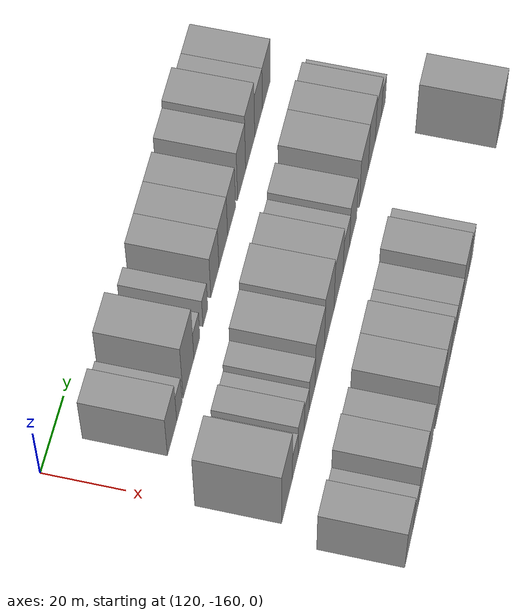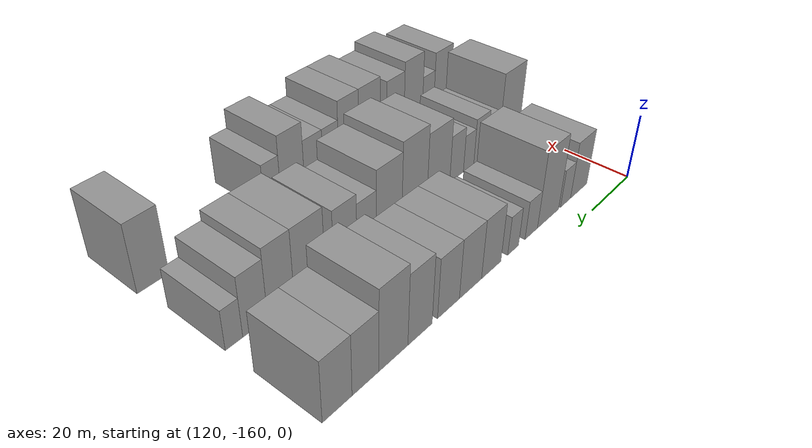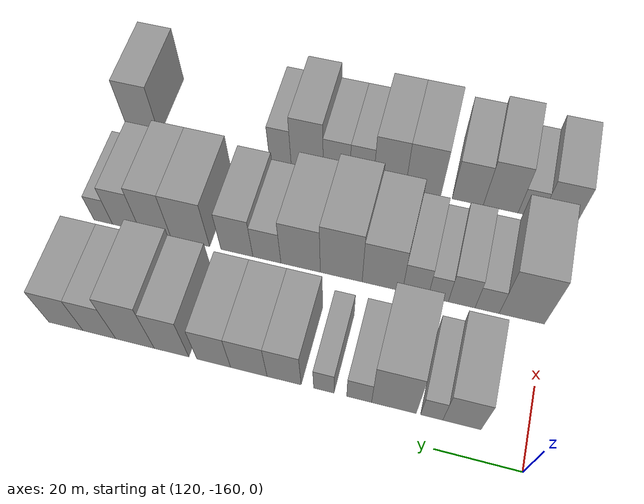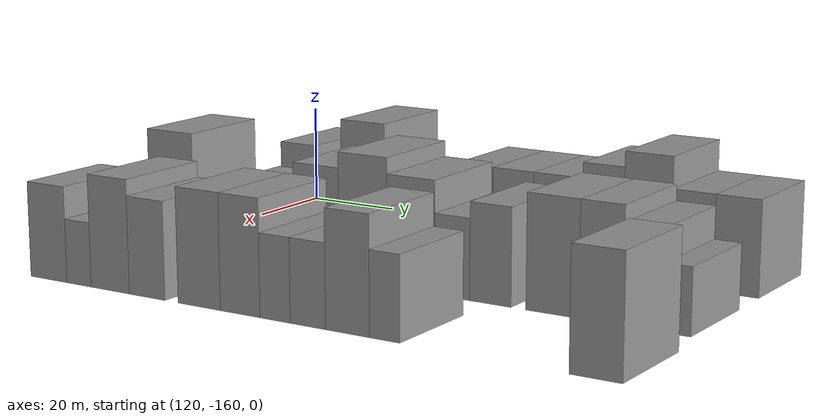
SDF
<sdf version="1.6">
 <world name="default">
  <model name="building_364">
   <static>1</static>
   <pose>137.0000 -145.1321 0 0.000000 0.000000 0.000000</pose>
   <link name="link">
    <pose>0 0 9.00 0 0 0</pose>
    <collision name="collision"><geometry><box><size>20.0000 8.8131 18.0000</size></box></geometry></collision>
    <visual name="visual">
     <cast_shadows>0</cast_shadows>
     <geometry><box><size>20.0000 8.8131 18.0000</size></box></geometry>
     <material>
      <script>
       <uri>model://grey_wall/materials/scripts</uri>
       <uri>model://grey_wall/materials/textures</uri>
       <name>vrc/grey_wall</name>
      </script>
     </material>
    </visual>
   </link>
  </model>
  <model name="building_365">
   <static>1</static>
   <pose>137.0000 -138.1507 0 0.000000 0.000000 0.000000</pose>
   <link name="link">
    <pose>0 0 6.00 0 0 0</pose>
    <collision name="collision"><geometry><box><size>20.0000 5.1497 12.0000</size></box></geometry></collision>
    <visual name="visual">
     <cast_shadows>0</cast_shadows>
     <geometry><box><size>20.0000 5.1497 12.0000</size></box></geometry>
     <material>
      <script>
       <uri>model://grey_wall/materials/scripts</uri>
       <uri>model://grey_wall/materials/textures</uri>
       <name>vrc/grey_wall</name>
      </script>
     </material>
    </visual>
   </link>
  </model>
  <model name="building_366">
   <static>1</static>
   <pose>137.0000 -129.3474 0 0.000000 0.000000 0.000000</pose>
   <link name="link">
    <pose>0 0 12.00 0 0 0</pose>
    <collision name="collision"><geometry><box><size>20.0000 10.4568 24.0000</size></box></geometry></collision>
    <visual name="visual">
     <cast_shadows>0</cast_shadows>
     <geometry><box><size>20.0000 10.4568 24.0000</size></box></geometry>
     <material>
      <script>
       <uri>model://grey_wall/materials/scripts</uri>
       <uri>model://grey_wall/materials/textures</uri>
       <name>vrc/grey_wall</name>
      </script>
     </material>
    </visual>
   </link>
  </model>
  <model name="building_367">
   <static>1</static>
   <pose>137.0000 -121.1845 0 0.000000 0.000000 0.000000</pose>
   <link name="link">
    <pose>0 0 6.00 0 0 0</pose>
    <collision name="collision"><geometry><box><size>20.0000 5.8690 12.0000</size></box></geometry></collision>
    <visual name="visual">
     <cast_shadows>0</cast_shadows>
     <geometry><box><size>20.0000 5.8690 12.0000</size></box></geometry>
     <material>
      <script>
       <uri>model://grey_wall/materials/scripts</uri>
       <uri>model://grey_wall/materials/textures</uri>
       <name>vrc/grey_wall</name>
      </script>
     </material>
    </visual>
   </link>
  </model>
  <model name="building_368">
   <static>1</static>
   <pose>137.0000 -112.8129 0 0.000000 0.000000 0.000000</pose>
   <link name="link">
    <pose>0 0 6.00 0 0 0</pose>
    <collision name="collision"><geometry><box><size>20.0000 4.8742 12.0000</size></box></geometry></collision>
    <visual name="visual">
     <cast_shadows>0</cast_shadows>
     <geometry><box><size>20.0000 4.8742 12.0000</size></box></geometry>
     <material>
      <script>
       <uri>model://grey_wall/materials/scripts</uri>
       <uri>model://grey_wall/materials/textures</uri>
       <name>vrc/grey_wall</name>
      </script>
     </material>
    </visual>
   </link>
  </model>
  <model name="building_369">
   <static>1</static>
   <pose>137.0000 -103.2546 0 0.000000 0.000000 0.000000</pose>
   <link name="link">
    <pose>0 0 9.00 0 0 0</pose>
    <collision name="collision"><geometry><box><size>20.0000 8.2423 18.0000</size></box></geometry></collision>
    <visual name="visual">
     <cast_shadows>0</cast_shadows>
     <geometry><box><size>20.0000 8.2423 18.0000</size></box></geometry>
     <material>
      <script>
       <uri>model://grey_wall/materials/scripts</uri>
       <uri>model://grey_wall/materials/textures</uri>
       <name>vrc/grey_wall</name>
      </script>
     </material>
    </visual>
   </link>
  </model>
  <model name="building_370">
   <static>1</static>
   <pose>137.0000 -94.6780 0 0.000000 0.000000 0.000000</pose>
   <link name="link">
    <pose>0 0 9.00 0 0 0</pose>
    <collision name="collision"><geometry><box><size>20.0000 8.9110 18.0000</size></box></geometry></collision>
    <visual name="visual">
     <cast_shadows>0</cast_shadows>
     <geometry><box><size>20.0000 8.9110 18.0000</size></box></geometry>
     <material>
      <script>
       <uri>model://grey_wall/materials/scripts</uri>
       <uri>model://grey_wall/materials/textures</uri>
       <name>vrc/grey_wall</name>
      </script>
     </material>
    </visual>
   </link>
  </model>
  <model name="building_371">
   <static>1</static>
   <pose>137.0000 -86.0611 0 0.000000 0.000000 0.000000</pose>
   <link name="link">
    <pose>0 0 9.00 0 0 0</pose>
    <collision name="collision"><geometry><box><size>20.0000 8.3228 18.0000</size></box></geometry></collision>
    <visual name="visual">
     <cast_shadows>0</cast_shadows>
     <geometry><box><size>20.0000 8.3228 18.0000</size></box></geometry>
     <material>
      <script>
       <uri>model://grey_wall/materials/scripts</uri>
       <uri>model://grey_wall/materials/textures</uri>
       <name>vrc/grey_wall</name>
      </script>
     </material>
    </visual>
   </link>
  </model>
  <model name="building_372">
   <static>1</static>
   <pose>137.0000 -75.5804 0 0.000000 0.000000 0.000000</pose>
   <link name="link">
    <pose>0 0 10.50 0 0 0</pose>
    <collision name="collision"><geometry><box><size>20.0000 8.6385 21.0000</size></box></geometry></collision>
    <visual name="visual">
     <cast_shadows>0</cast_shadows>
     <geometry><box><size>20.0000 8.6385 21.0000</size></box></geometry>
     <material>
      <script>
       <uri>model://grey_wall/materials/scripts</uri>
       <uri>model://grey_wall/materials/textures</uri>
       <name>vrc/grey_wall</name>
      </script>
     </material>
    </visual>
   </link>
  </model>
  <model name="building_373">
   <static>1</static>
   <pose>137.0000 -66.3863 0 0.000000 0.000000 0.000000</pose>
   <link name="link">
    <pose>0 0 12.00 0 0 0</pose>
    <collision name="collision"><geometry><box><size>20.0000 9.7497 24.0000</size></box></geometry></collision>
    <visual name="visual">
     <cast_shadows>0</cast_shadows>
     <geometry><box><size>20.0000 9.7497 24.0000</size></box></geometry>
     <material>
      <script>
       <uri>model://grey_wall/materials/scripts</uri>
       <uri>model://grey_wall/materials/textures</uri>
       <name>vrc/grey_wall</name>
      </script>
     </material>
    </visual>
   </link>
  </model>
  <model name="building_374">
   <static>1</static>
   <pose>137.0000 -57.3161 0 0.000000 0.000000 0.000000</pose>
   <link name="link">
    <pose>0 0 9.00 0 0 0</pose>
    <collision name="collision"><geometry><box><size>20.0000 8.3906 18.0000</size></box></geometry></collision>
    <visual name="visual">
     <cast_shadows>0</cast_shadows>
     <geometry><box><size>20.0000 8.3906 18.0000</size></box></geometry>
     <material>
      <script>
       <uri>model://grey_wall/materials/scripts</uri>
       <uri>model://grey_wall/materials/textures</uri>
       <name>vrc/grey_wall</name>
      </script>
     </material>
    </visual>
   </link>
  </model>
  <model name="building_375">
   <static>1</static>
   <pose>137.0000 -48.7037 0 0.000000 0.000000 0.000000</pose>
   <link name="link">
    <pose>0 0 9.00 0 0 0</pose>
    <collision name="collision"><geometry><box><size>20.0000 8.8342 18.0000</size></box></geometry></collision>
    <visual name="visual">
     <cast_shadows>0</cast_shadows>
     <geometry><box><size>20.0000 8.8342 18.0000</size></box></geometry>
     <material>
      <script>
       <uri>model://grey_wall/materials/scripts</uri>
       <uri>model://grey_wall/materials/textures</uri>
       <name>vrc/grey_wall</name>
      </script>
     </material>
    </visual>
   </link>
  </model>
  <model name="building_480">
   <static>1</static>
   <pose>166.0000 -154.7428 0 0.000000 0.000000 0.000000</pose>
   <link name="link">
    <pose>0 0 12.00 0 0 0</pose>
    <collision name="collision"><geometry><box><size>20.0000 10.9866 24.0000</size></box></geometry></collision>
    <visual name="visual">
     <cast_shadows>0</cast_shadows>
     <geometry><box><size>20.0000 10.9866 24.0000</size></box></geometry>
     <material>
      <script>
       <uri>model://grey_wall/materials/scripts</uri>
       <uri>model://grey_wall/materials/textures</uri>
       <name>vrc/grey_wall</name>
      </script>
     </material>
    </visual>
   </link>
  </model>
  <model name="building_481">
   <static>1</static>
   <pose>166.0000 -146.2857 0 0.000000 0.000000 0.000000</pose>
   <link name="link">
    <pose>0 0 6.00 0 0 0</pose>
    <collision name="collision"><geometry><box><size>20.0000 5.9277 12.0000</size></box></geometry></collision>
    <visual name="visual">
     <cast_shadows>0</cast_shadows>
     <geometry><box><size>20.0000 5.9277 12.0000</size></box></geometry>
     <material>
      <script>
       <uri>model://grey_wall/materials/scripts</uri>
       <uri>model://grey_wall/materials/textures</uri>
       <name>vrc/grey_wall</name>
      </script>
     </material>
    </visual>
   </link>
  </model>
  <model name="building_482">
   <static>1</static>
   <pose>166.0000 -140.0182 0 0.000000 0.000000 0.000000</pose>
   <link name="link">
    <pose>0 0 7.50 0 0 0</pose>
    <collision name="collision"><geometry><box><size>20.0000 6.6073 15.0000</size></box></geometry></collision>
    <visual name="visual">
     <cast_shadows>0</cast_shadows>
     <geometry><box><size>20.0000 6.6073 15.0000</size></box></geometry>
     <material>
      <script>
       <uri>model://grey_wall/materials/scripts</uri>
       <uri>model://grey_wall/materials/textures</uri>
       <name>vrc/grey_wall</name>
      </script>
     </material>
    </visual>
   </link>
  </model>
  <model name="building_483">
   <static>1</static>
   <pose>166.0000 -134.2066 0 0.000000 0.000000 0.000000</pose>
   <link name="link">
    <pose>0 0 6.00 0 0 0</pose>
    <collision name="collision"><geometry><box><size>20.0000 5.0158 12.0000</size></box></geometry></collision>
    <visual name="visual">
     <cast_shadows>0</cast_shadows>
     <geometry><box><size>20.0000 5.0158 12.0000</size></box></geometry>
     <material>
      <script>
       <uri>model://grey_wall/materials/scripts</uri>
       <uri>model://grey_wall/materials/textures</uri>
       <name>vrc/grey_wall</name>
      </script>
     </material>
    </visual>
   </link>
  </model>
  <model name="building_484">
   <static>1</static>
   <pose>166.0000 -128.4891 0 0.000000 0.000000 0.000000</pose>
   <link name="link">
    <pose>0 0 7.50 0 0 0</pose>
    <collision name="collision"><geometry><box><size>20.0000 6.4194 15.0000</size></box></geometry></collision>
    <visual name="visual">
     <cast_shadows>0</cast_shadows>
     <geometry><box><size>20.0000 6.4194 15.0000</size></box></geometry>
     <material>
      <script>
       <uri>model://grey_wall/materials/scripts</uri>
       <uri>model://grey_wall/materials/textures</uri>
       <name>vrc/grey_wall</name>
      </script>
     </material>
    </visual>
   </link>
  </model>
  <model name="building_485">
   <static>1</static>
   <pose>166.0000 -120.1821 0 0.000000 0.000000 0.000000</pose>
   <link name="link">
    <pose>0 0 10.50 0 0 0</pose>
    <collision name="collision"><geometry><box><size>20.0000 10.1947 21.0000</size></box></geometry></collision>
    <visual name="visual">
     <cast_shadows>0</cast_shadows>
     <geometry><box><size>20.0000 10.1947 21.0000</size></box></geometry>
     <material>
      <script>
       <uri>model://grey_wall/materials/scripts</uri>
       <uri>model://grey_wall/materials/textures</uri>
       <name>vrc/grey_wall</name>
      </script>
     </material>
    </visual>
   </link>
  </model>
  <model name="building_486">
   <static>1</static>
   <pose>166.0000 -109.7435 0 0.000000 0.000000 0.000000</pose>
   <link name="link">
    <pose>0 0 12.00 0 0 0</pose>
    <collision name="collision"><geometry><box><size>20.0000 10.6824 24.0000</size></box></geometry></collision>
    <visual name="visual">
     <cast_shadows>0</cast_shadows>
     <geometry><box><size>20.0000 10.6824 24.0000</size></box></geometry>
     <material>
      <script>
       <uri>model://grey_wall/materials/scripts</uri>
       <uri>model://grey_wall/materials/textures</uri>
       <name>vrc/grey_wall</name>
      </script>
     </material>
    </visual>
   </link>
  </model>
  <model name="building_487">
   <static>1</static>
   <pose>166.0000 -99.3065 0 0.000000 0.000000 0.000000</pose>
   <link name="link">
    <pose>0 0 10.50 0 0 0</pose>
    <collision name="collision"><geometry><box><size>20.0000 10.1917 21.0000</size></box></geometry></collision>
    <visual name="visual">
     <cast_shadows>0</cast_shadows>
     <geometry><box><size>20.0000 10.1917 21.0000</size></box></geometry>
     <material>
      <script>
       <uri>model://grey_wall/materials/scripts</uri>
       <uri>model://grey_wall/materials/textures</uri>
       <name>vrc/grey_wall</name>
      </script>
     </material>
    </visual>
   </link>
  </model>
  <model name="building_488">
   <static>1</static>
   <pose>166.0000 -90.5502 0 0.000000 0.000000 0.000000</pose>
   <link name="link">
    <pose>0 0 7.50 0 0 0</pose>
    <collision name="collision"><geometry><box><size>20.0000 7.3208 15.0000</size></box></geometry></collision>
    <visual name="visual">
     <cast_shadows>0</cast_shadows>
     <geometry><box><size>20.0000 7.3208 15.0000</size></box></geometry>
     <material>
      <script>
       <uri>model://grey_wall/materials/scripts</uri>
       <uri>model://grey_wall/materials/textures</uri>
       <name>vrc/grey_wall</name>
      </script>
     </material>
    </visual>
   </link>
  </model>
  <model name="building_489">
   <static>1</static>
   <pose>166.0000 -82.6705 0 0.000000 0.000000 0.000000</pose>
   <link name="link">
    <pose>0 0 9.00 0 0 0</pose>
    <collision name="collision"><geometry><box><size>20.0000 8.4388 18.0000</size></box></geometry></collision>
    <visual name="visual">
     <cast_shadows>0</cast_shadows>
     <geometry><box><size>20.0000 8.4388 18.0000</size></box></geometry>
     <material>
      <script>
       <uri>model://grey_wall/materials/scripts</uri>
       <uri>model://grey_wall/materials/textures</uri>
       <name>vrc/grey_wall</name>
      </script>
     </material>
    </visual>
   </link>
  </model>
  <model name="building_490">
   <static>1</static>
   <pose>166.0000 -70.2740 0 0.000000 0.000000 0.000000</pose>
   <link name="link">
    <pose>0 0 10.50 0 0 0</pose>
    <collision name="collision"><geometry><box><size>20.0000 10.3541 21.0000</size></box></geometry></collision>
    <visual name="visual">
     <cast_shadows>0</cast_shadows>
     <geometry><box><size>20.0000 10.3541 21.0000</size></box></geometry>
     <material>
      <script>
       <uri>model://grey_wall/materials/scripts</uri>
       <uri>model://grey_wall/materials/textures</uri>
       <name>vrc/grey_wall</name>
      </script>
     </material>
    </visual>
   </link>
  </model>
  <model name="building_491">
   <static>1</static>
   <pose>166.0000 -60.8939 0 0.000000 0.000000 0.000000</pose>
   <link name="link">
    <pose>0 0 10.50 0 0 0</pose>
    <collision name="collision"><geometry><box><size>20.0000 8.4061 21.0000</size></box></geometry></collision>
    <visual name="visual">
     <cast_shadows>0</cast_shadows>
     <geometry><box><size>20.0000 8.4061 21.0000</size></box></geometry>
     <material>
      <script>
       <uri>model://grey_wall/materials/scripts</uri>
       <uri>model://grey_wall/materials/textures</uri>
       <name>vrc/grey_wall</name>
      </script>
     </material>
    </visual>
   </link>
  </model>
  <model name="building_492">
   <static>1</static>
   <pose>166.0000 -52.9445 0 0.000000 0.000000 0.000000</pose>
   <link name="link">
    <pose>0 0 9.00 0 0 0</pose>
    <collision name="collision"><geometry><box><size>20.0000 7.4928 18.0000</size></box></geometry></collision>
    <visual name="visual">
     <cast_shadows>0</cast_shadows>
     <geometry><box><size>20.0000 7.4928 18.0000</size></box></geometry>
     <material>
      <script>
       <uri>model://grey_wall/materials/scripts</uri>
       <uri>model://grey_wall/materials/textures</uri>
       <name>vrc/grey_wall</name>
      </script>
     </material>
    </visual>
   </link>
  </model>
  <model name="building_493">
   <static>1</static>
   <pose>166.0000 -46.6658 0 0.000000 0.000000 0.000000</pose>
   <link name="link">
    <pose>0 0 6.00 0 0 0</pose>
    <collision name="collision"><geometry><box><size>20.0000 5.0645 12.0000</size></box></geometry></collision>
    <visual name="visual">
     <cast_shadows>0</cast_shadows>
     <geometry><box><size>20.0000 5.0645 12.0000</size></box></geometry>
     <material>
      <script>
       <uri>model://grey_wall/materials/scripts</uri>
       <uri>model://grey_wall/materials/textures</uri>
       <name>vrc/grey_wall</name>
      </script>
     </material>
    </visual>
   </link>
  </model>
  <model name="building_596">
   <static>1</static>
   <pose>195.0000 -160.1437 0 0.000000 0.000000 0.000000</pose>
   <link name="link">
    <pose>0 0 9.00 0 0 0</pose>
    <collision name="collision"><geometry><box><size>20.0000 8.9356 18.0000</size></box></geometry></collision>
    <visual name="visual">
     <cast_shadows>0</cast_shadows>
     <geometry><box><size>20.0000 8.9356 18.0000</size></box></geometry>
     <material>
      <script>
       <uri>model://grey_wall/materials/scripts</uri>
       <uri>model://grey_wall/materials/textures</uri>
       <name>vrc/grey_wall</name>
      </script>
     </material>
    </visual>
   </link>
  </model>
  <model name="building_597">
   <static>1</static>
   <pose>195.0000 -152.7299 0 0.000000 0.000000 0.000000</pose>
   <link name="link">
    <pose>0 0 6.00 0 0 0</pose>
    <collision name="collision"><geometry><box><size>20.0000 5.8920 12.0000</size></box></geometry></collision>
    <visual name="visual">
     <cast_shadows>0</cast_shadows>
     <geometry><box><size>20.0000 5.8920 12.0000</size></box></geometry>
     <material>
      <script>
       <uri>model://grey_wall/materials/scripts</uri>
       <uri>model://grey_wall/materials/textures</uri>
       <name>vrc/grey_wall</name>
      </script>
     </material>
    </visual>
   </link>
  </model>
  <model name="building_598">
   <static>1</static>
   <pose>195.0000 -145.2344 0 0.000000 0.000000 0.000000</pose>
   <link name="link">
    <pose>0 0 10.50 0 0 0</pose>
    <collision name="collision"><geometry><box><size>20.0000 9.0990 21.0000</size></box></geometry></collision>
    <visual name="visual">
     <cast_shadows>0</cast_shadows>
     <geometry><box><size>20.0000 9.0990 21.0000</size></box></geometry>
     <material>
      <script>
       <uri>model://grey_wall/materials/scripts</uri>
       <uri>model://grey_wall/materials/textures</uri>
       <name>vrc/grey_wall</name>
      </script>
     </material>
    </visual>
   </link>
  </model>
  <model name="building_599">
   <static>1</static>
   <pose>195.0000 -136.5656 0 0.000000 0.000000 0.000000</pose>
   <link name="link">
    <pose>0 0 9.00 0 0 0</pose>
    <collision name="collision"><geometry><box><size>20.0000 8.2386 18.0000</size></box></geometry></collision>
    <visual name="visual">
     <cast_shadows>0</cast_shadows>
     <geometry><box><size>20.0000 8.2386 18.0000</size></box></geometry>
     <material>
      <script>
       <uri>model://grey_wall/materials/scripts</uri>
       <uri>model://grey_wall/materials/textures</uri>
       <name>vrc/grey_wall</name>
      </script>
     </material>
    </visual>
   </link>
  </model>
  <model name="building_600">
   <static>1</static>
   <pose>195.0000 -124.7177 0 0.000000 0.000000 0.000000</pose>
   <link name="link">
    <pose>0 0 10.50 0 0 0</pose>
    <collision name="collision"><geometry><box><size>20.0000 9.4572 21.0000</size></box></geometry></collision>
    <visual name="visual">
     <cast_shadows>0</cast_shadows>
     <geometry><box><size>20.0000 9.4572 21.0000</size></box></geometry>
     <material>
      <script>
       <uri>model://grey_wall/materials/scripts</uri>
       <uri>model://grey_wall/materials/textures</uri>
       <name>vrc/grey_wall</name>
      </script>
     </material>
    </visual>
   </link>
  </model>
  <model name="building_601">
   <static>1</static>
   <pose>195.0000 -115.6810 0 0.000000 0.000000 0.000000</pose>
   <link name="link">
    <pose>0 0 10.50 0 0 0</pose>
    <collision name="collision"><geometry><box><size>20.0000 8.6161 21.0000</size></box></geometry></collision>
    <visual name="visual">
     <cast_shadows>0</cast_shadows>
     <geometry><box><size>20.0000 8.6161 21.0000</size></box></geometry>
     <material>
      <script>
       <uri>model://grey_wall/materials/scripts</uri>
       <uri>model://grey_wall/materials/textures</uri>
       <name>vrc/grey_wall</name>
      </script>
     </material>
    </visual>
   </link>
  </model>
  <model name="building_602">
   <static>1</static>
   <pose>195.0000 -108.1710 0 0.000000 0.000000 0.000000</pose>
   <link name="link">
    <pose>0 0 7.50 0 0 0</pose>
    <collision name="collision"><geometry><box><size>20.0000 6.4041 15.0000</size></box></geometry></collision>
    <visual name="visual">
     <cast_shadows>0</cast_shadows>
     <geometry><box><size>20.0000 6.4041 15.0000</size></box></geometry>
     <material>
      <script>
       <uri>model://grey_wall/materials/scripts</uri>
       <uri>model://grey_wall/materials/textures</uri>
       <name>vrc/grey_wall</name>
      </script>
     </material>
    </visual>
   </link>
  </model>
  <model name="building_603">
   <static>1</static>
   <pose>195.0000 -101.3112 0 0.000000 0.000000 0.000000</pose>
   <link name="link">
    <pose>0 0 7.50 0 0 0</pose>
    <collision name="collision"><geometry><box><size>20.0000 7.3154 15.0000</size></box></geometry></collision>
    <visual name="visual">
     <cast_shadows>0</cast_shadows>
     <geometry><box><size>20.0000 7.3154 15.0000</size></box></geometry>
     <material>
      <script>
       <uri>model://grey_wall/materials/scripts</uri>
       <uri>model://grey_wall/materials/textures</uri>
       <name>vrc/grey_wall</name>
      </script>
     </material>
    </visual>
   </link>
  </model>
  <model name="building_604">
   <static>1</static>
   <pose>195.0000 -93.2119 0 0.000000 0.000000 0.000000</pose>
   <link name="link">
    <pose>0 0 10.50 0 0 0</pose>
    <collision name="collision"><geometry><box><size>20.0000 8.8834 21.0000</size></box></geometry></collision>
    <visual name="visual">
     <cast_shadows>0</cast_shadows>
     <geometry><box><size>20.0000 8.8834 21.0000</size></box></geometry>
     <material>
      <script>
       <uri>model://grey_wall/materials/scripts</uri>
       <uri>model://grey_wall/materials/textures</uri>
       <name>vrc/grey_wall</name>
      </script>
     </material>
    </visual>
   </link>
  </model>
  <model name="building_605">
   <static>1</static>
   <pose>195.0000 -85.7622 0 0.000000 0.000000 0.000000</pose>
   <link name="link">
    <pose>0 0 7.50 0 0 0</pose>
    <collision name="collision"><geometry><box><size>20.0000 6.0159 15.0000</size></box></geometry></collision>
    <visual name="visual">
     <cast_shadows>0</cast_shadows>
     <geometry><box><size>20.0000 6.0159 15.0000</size></box></geometry>
     <material>
      <script>
       <uri>model://grey_wall/materials/scripts</uri>
       <uri>model://grey_wall/materials/textures</uri>
       <name>vrc/grey_wall</name>
      </script>
     </material>
    </visual>
   </link>
  </model>
  <model name="building_606">
   <static>1</static>
   <pose>195.0000 -46.7821 0 0.000000 0.000000 0.000000</pose>
   <link name="link">
    <pose>0 0 10.50 0 0 0</pose>
    <collision name="collision"><geometry><box><size>20.0000 9.3148 21.0000</size></box></geometry></collision>
    <visual name="visual">
     <cast_shadows>0</cast_shadows>
     <geometry><box><size>20.0000 9.3148 21.0000</size></box></geometry>
     <material>
      <script>
       <uri>model://grey_wall/materials/scripts</uri>
       <uri>model://grey_wall/materials/textures</uri>
       <name>vrc/grey_wall</name>
      </script>
     </material>
    </visual>
   </link>
  </model>
 </world>
</sdf>
